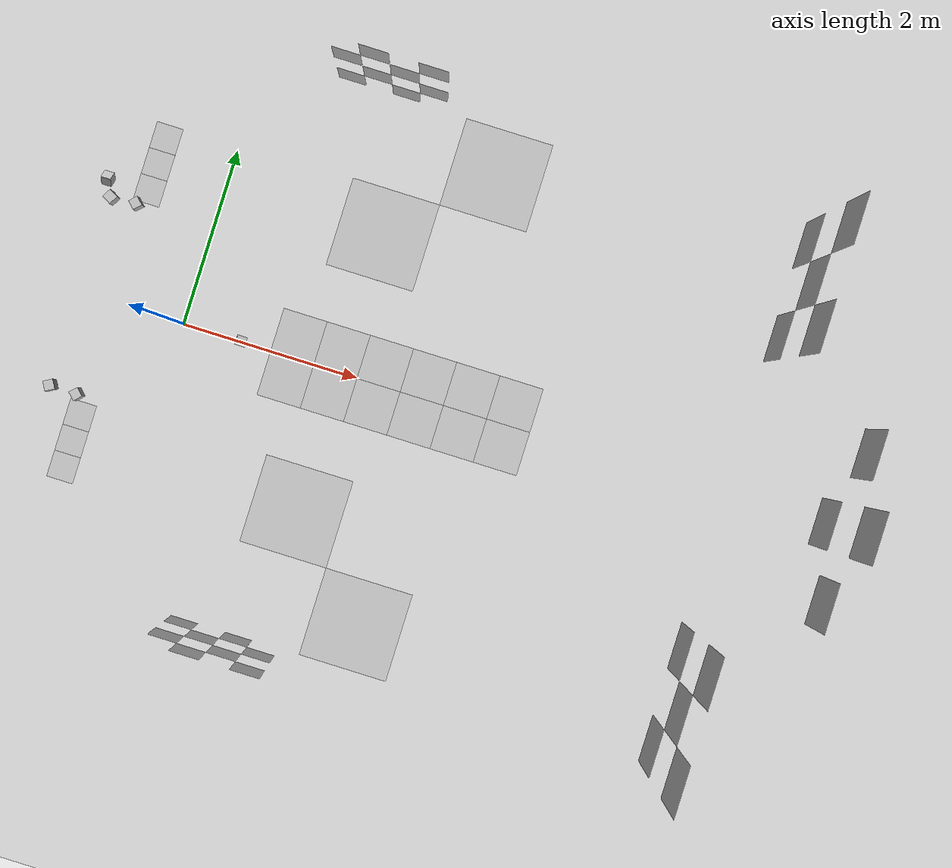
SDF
<sdf version="1.7">
 <world name="default">
  <model name="ground_plane">
   <pose>1.6 0 -0.001 0 -0 0</pose>
   <static>1</static>
   <link name="link">
    <collision name="collision">
     <geometry><plane><normal>0 0 1</normal><size>100 100</size></plane></geometry>
     <surface>
      <contact><collide_bitmask>65535</collide_bitmask></contact>
      <friction><ode><mu>100</mu><mu2>50</mu2></ode></friction>
     </surface>
    </collision>
    <visual name="visual">
     <cast_shadows>0</cast_shadows>
     <geometry><plane><normal>0 0 1</normal><size>100 100</size></plane></geometry>
     <material>
      <script><uri>file://media/materials/scripts/gazebo.material</uri><name>Gazebo/Grey</name></script>
     </material>
    </visual>
   </link>
  </model>
  <model name="Apriltag36_10_00107">
   <link name="main">
    <visual name="main_Visual">
     <geometry><box><size>0.5 0.5 0.0001</size></box></geometry>
     <material>
      <script>
       <uri>model://Apriltag36_10_00107/materials/scripts</uri>
       <uri>model://Apriltag36_10_00107/materials/textures</uri>
       <name>Apriltag36_10_00107</name>
      </script>
     </material>
    </visual>
    <collision name="collision"><geometry><box><size>0.5 0.5 0.0001</size></box></geometry></collision>
   </link>
   <static>1</static>
   <pose>3.75 0.25 0 0 -0 0</pose>
  </model>
  <model name="Apriltag36_10_00106">
   <link name="main">
    <visual name="main_Visual">
     <geometry><box><size>0.5 0.5 0.0001</size></box></geometry>
     <material>
      <script>
       <uri>model://Apriltag36_10_00106/materials/scripts</uri>
       <uri>model://Apriltag36_10_00106/materials/textures</uri>
       <name>Apriltag36_10_00106</name>
      </script>
     </material>
    </visual>
    <collision name="collision"><geometry><box><size>0.5 0.5 0.0001</size></box></geometry></collision>
   </link>
   <static>1</static>
   <pose>3.25 0.25 0 0 -0 0</pose>
  </model>
  <model name="Apriltag36_10_00105">
   <link name="main">
    <visual name="main_Visual">
     <geometry><box><size>0.5 0.5 0.0001</size></box></geometry>
     <material>
      <script>
       <uri>model://Apriltag36_10_00105/materials/scripts</uri>
       <uri>model://Apriltag36_10_00105/materials/textures</uri>
       <name>Apriltag36_10_00105</name>
      </script>
     </material>
    </visual>
    <collision name="collision"><geometry><box><size>0.5 0.5 0.0001</size></box></geometry></collision>
   </link>
   <static>1</static>
   <pose>2.75 0.25 0 0 -0 0</pose>
  </model>
  <model name="Apriltag36_10_00104">
   <link name="main">
    <visual name="main_Visual">
     <geometry><box><size>0.5 0.5 0.0001</size></box></geometry>
     <material>
      <script>
       <uri>model://Apriltag36_10_00104/materials/scripts</uri>
       <uri>model://Apriltag36_10_00104/materials/textures</uri>
       <name>Apriltag36_10_00104</name>
      </script>
     </material>
    </visual>
    <collision name="collision"><geometry><box><size>0.5 0.5 0.0001</size></box></geometry></collision>
   </link>
   <static>1</static>
   <pose>2.25 0.25 0 0 -0 0</pose>
  </model>
  <model name="Apriltag36_10_00111">
   <link name="main">
    <visual name="main_Visual">
     <geometry><box><size>0.5 0.5 0.0001</size></box></geometry>
     <material>
      <script>
       <uri>model://Apriltag36_10_00111/materials/scripts</uri>
       <uri>model://Apriltag36_10_00111/materials/textures</uri>
       <name>Apriltag36_10_00111</name>
      </script>
     </material>
    </visual>
    <collision name="collision"><geometry><box><size>0.5 0.5 0.0001</size></box></geometry></collision>
   </link>
   <static>1</static>
   <pose>3.75 -0.25 0 0 -0 0</pose>
  </model>
  <model name="Apriltag36_10_00110">
   <link name="main">
    <visual name="main_Visual">
     <geometry><box><size>0.5 0.5 0.0001</size></box></geometry>
     <material>
      <script>
       <uri>model://Apriltag36_10_00110/materials/scripts</uri>
       <uri>model://Apriltag36_10_00110/materials/textures</uri>
       <name>Apriltag36_10_00110</name>
      </script>
     </material>
    </visual>
    <collision name="collision"><geometry><box><size>0.5 0.5 0.0001</size></box></geometry></collision>
   </link>
   <static>1</static>
   <pose>3.25 -0.25 0 0 -0 0</pose>
  </model>
  <model name="Apriltag36_10_00108">
   <link name="main">
    <visual name="main_Visual">
     <geometry><box><size>0.5 0.5 0.0001</size></box></geometry>
     <material>
      <script>
       <uri>model://Apriltag36_10_00108/materials/scripts</uri>
       <uri>model://Apriltag36_10_00108/materials/textures</uri>
       <name>Apriltag36_10_00108</name>
      </script>
     </material>
    </visual>
    <collision name="collision"><geometry><box><size>0.5 0.5 0.0001</size></box></geometry></collision>
   </link>
   <static>1</static>
   <pose>2.25 -0.25 0 0 -0 0</pose>
  </model>
  <model name="Apriltag36_10_00109">
   <link name="main">
    <visual name="main_Visual">
     <geometry><box><size>0.5 0.5 0.0001</size></box></geometry>
     <material>
      <script>
       <uri>model://Apriltag36_10_00109/materials/scripts</uri>
       <uri>model://Apriltag36_10_00109/materials/textures</uri>
       <name>Apriltag36_10_00109</name>
      </script>
     </material>
    </visual>
    <collision name="collision"><geometry><box><size>0.5 0.5 0.0001</size></box></geometry></collision>
   </link>
   <static>1</static>
   <pose>2.75 -0.25 0 0 -0 0</pose>
  </model>
  <model name="Apriltag36_11_00410">
   <link name="main">
    <pose>0 0 0 0 -1.5707 0</pose>
    <visual name="main_Visual">
     <geometry><box><size>0.5 0.5 0.0001</size></box></geometry>
     <material>
      <script>
       <uri>model://Apriltag36_11_00410/materials/scripts</uri>
       <uri>model://Apriltag36_11_00410/materials/textures</uri>
       <name>Apriltag36_11_00410</name>
      </script>
     </material>
    </visual>
    <collision name="collision"><geometry><box><size>0.5 0.5 0.0001</size></box></geometry></collision>
   </link>
   <static>1</static>
   <pose>7 0 2 0 -0 0</pose>
  </model>
  <model name="Apriltag36_11_00411">
   <link name="main">
    <pose>0 0 0 0 -1.5707 0</pose>
    <visual name="main_Visual">
     <geometry><box><size>0.5 0.5 0.0001</size></box></geometry>
     <material>
      <script>
       <uri>model://Apriltag36_11_00411/materials/scripts</uri>
       <uri>model://Apriltag36_11_00411/materials/textures</uri>
       <name>Apriltag36_11_00411</name>
      </script>
     </material>
    </visual>
    <collision name="collision"><geometry><box><size>0.5 0.5 0.0001</size></box></geometry></collision>
   </link>
   <static>1</static>
   <pose>7 0.75 1.5 0 -0 0</pose>
  </model>
  <model name="Apriltag36_11_00412">
   <link name="main">
    <pose>0 0 0 0 -1.5707 0</pose>
    <visual name="main_Visual">
     <geometry><box><size>0.5 0.5 0.0001</size></box></geometry>
     <material>
      <script>
       <uri>model://Apriltag36_11_00412/materials/scripts</uri>
       <uri>model://Apriltag36_11_00412/materials/textures</uri>
       <name>Apriltag36_11_00412</name>
      </script>
     </material>
    </visual>
    <collision name="collision"><geometry><box><size>0.5 0.5 0.0001</size></box></geometry></collision>
   </link>
   <static>1</static>
   <pose>7 -0.75 1.5 0 -0 0</pose>
  </model>
  <model name="Apriltag36_11_00413">
   <link name="main">
    <pose>0 0 0 0 -1.5707 0</pose>
    <visual name="main_Visual">
     <geometry><box><size>0.5 0.5 0.0001</size></box></geometry>
     <material>
      <script>
       <uri>model://Apriltag36_11_00413/materials/scripts</uri>
       <uri>model://Apriltag36_11_00413/materials/textures</uri>
       <name>Apriltag36_11_00413</name>
      </script>
     </material>
    </visual>
    <collision name="collision"><geometry><box><size>0.5 0.5 0.0001</size></box></geometry></collision>
   </link>
   <static>1</static>
   <pose>7 0 1 0 -0 0</pose>
  </model>
  <model name="Apriltag36_11_00360">
   <link name="main">
    <pose>0 0 0 0 -1.5707 0</pose>
    <visual name="main_Visual">
     <geometry><box><size>0.5 0.5 0.0001</size></box></geometry>
     <material>
      <script>
       <uri>model://Apriltag36_11_00360/materials/scripts</uri>
       <uri>model://Apriltag36_11_00360/materials/textures</uri>
       <name>Apriltag36_11_00360</name>
      </script>
     </material>
    </visual>
    <collision name="collision"><geometry><box><size>0.5 0.5 0.0001</size></box></geometry></collision>
   </link>
   <static>1</static>
   <pose>6 1.65 2 0 -0 0</pose>
  </model>
  <model name="Apriltag36_11_00362">
   <link name="main">
    <pose>0 0 0 0 -1.5707 0</pose>
    <visual name="main_Visual">
     <geometry><box><size>0.5 0.5 0.0001</size></box></geometry>
     <material>
      <script>
       <uri>model://Apriltag36_11_00362/materials/scripts</uri>
       <uri>model://Apriltag36_11_00362/materials/textures</uri>
       <name>Apriltag36_11_00362</name>
      </script>
     </material>
    </visual>
    <collision name="collision"><geometry><box><size>0.5 0.5 0.0001</size></box></geometry></collision>
   </link>
   <static>1</static>
   <pose>6 1.65 1 0 -0 0</pose>
  </model>
  <model name="Apriltag36_11_00363">
   <link name="main">
    <pose>0 0 0 0 -1.5707 0</pose>
    <visual name="main_Visual">
     <geometry><box><size>0.5 0.5 0.0001</size></box></geometry>
     <material>
      <script>
       <uri>model://Apriltag36_11_00363/materials/scripts</uri>
       <uri>model://Apriltag36_11_00363/materials/textures</uri>
       <name>Apriltag36_11_00363</name>
      </script>
     </material>
    </visual>
    <collision name="collision"><geometry><box><size>0.5 0.5 0.0001</size></box></geometry></collision>
   </link>
   <static>1</static>
   <pose>6 -1.65 2 0 -0 0</pose>
  </model>
  <model name="Apriltag36_11_00365">
   <link name="main">
    <pose>0 0 0 0 -1.5707 0</pose>
    <visual name="main_Visual">
     <geometry><box><size>0.5 0.5 0.0001</size></box></geometry>
     <material>
      <script>
       <uri>model://Apriltag36_11_00365/materials/scripts</uri>
       <uri>model://Apriltag36_11_00365/materials/textures</uri>
       <name>Apriltag36_11_00365</name>
      </script>
     </material>
    </visual>
    <collision name="collision"><geometry><box><size>0.5 0.5 0.0001</size></box></geometry></collision>
   </link>
   <static>1</static>
   <pose>6 -1.65 1 0 -0 0</pose>
  </model>
  <model name="Apriltag36_11_00380">
   <link name="main">
    <pose>0 0 0 1.5707 -1.5707 0</pose>
    <visual name="main_Visual">
     <geometry><box><size>0.3 0.3 0.0001</size></box></geometry>
     <material>
      <script>
       <uri>model://Apriltag36_11_00380/materials/scripts</uri>
       <uri>model://Apriltag36_11_00380/materials/textures</uri>
       <name>Apriltag36_11_00380</name>
      </script>
     </material>
    </visual>
    <collision name="collision"><geometry><box><size>0.5 0.5 0.0001</size></box></geometry></collision>
   </link>
   <static>1</static>
   <pose>1.35 3 1.45 0 -0 0</pose>
  </model>
  <model name="Apriltag36_11_00381">
   <link name="main">
    <pose>0 0 0 1.5707 -1.5707 0</pose>
    <visual name="main_Visual">
     <geometry><box><size>0.3 0.3 0.0001</size></box></geometry>
     <material>
      <script>
       <uri>model://Apriltag36_11_00381/materials/scripts</uri>
       <uri>model://Apriltag36_11_00381/materials/textures</uri>
       <name>Apriltag36_11_00381</name>
      </script>
     </material>
    </visual>
    <collision name="collision"><geometry><box><size>0.5 0.5 0.0001</size></box></geometry></collision>
   </link>
   <static>1</static>
   <pose>1.95 3 1.45 0 -0 0</pose>
  </model>
  <model name="Apriltag36_11_00376">
   <link name="main">
    <pose>0 0 0 1.5707 -1.5707 0</pose>
    <visual name="main_Visual">
     <geometry><box><size>0.3 0.3 0.0001</size></box></geometry>
     <material>
      <script>
       <uri>model://Apriltag36_11_00376/materials/scripts</uri>
       <uri>model://Apriltag36_11_00376/materials/textures</uri>
       <name>Apriltag36_11_00376</name>
      </script>
     </material>
    </visual>
    <collision name="collision"><geometry><box><size>0.5 0.5 0.0001</size></box></geometry></collision>
   </link>
   <static>1</static>
   <pose>1.35 3 0.85 0 -0 0</pose>
  </model>
  <model name="Apriltag36_11_00379">
   <link name="main">
    <pose>0 0 0 1.5707 -1.5707 0</pose>
    <visual name="main_Visual">
     <geometry><box><size>0.3 0.3 0.0001</size></box></geometry>
     <material>
      <script>
       <uri>model://Apriltag36_11_00379/materials/scripts</uri>
       <uri>model://Apriltag36_11_00379/materials/textures</uri>
       <name>Apriltag36_11_00379</name>
      </script>
     </material>
    </visual>
    <collision name="collision"><geometry><box><size>0.5 0.5 0.0001</size></box></geometry></collision>
   </link>
   <static>1</static>
   <pose>1.65 3 1.15 0 -0 0</pose>
  </model>
  <model name="Apriltag36_11_00378">
   <link name="main">
    <pose>0 0 0 1.5707 -1.5707 0</pose>
    <visual name="main_Visual">
     <geometry><box><size>0.3 0.3 0.0001</size></box></geometry>
     <material>
      <script>
       <uri>model://Apriltag36_11_00378/materials/scripts</uri>
       <uri>model://Apriltag36_11_00378/materials/textures</uri>
       <name>Apriltag36_11_00378</name>
      </script>
     </material>
    </visual>
    <collision name="collision"><geometry><box><size>0.5 0.5 0.0001</size></box></geometry></collision>
   </link>
   <static>1</static>
   <pose>1.05 3 1.15 0 -0 0</pose>
  </model>
  <model name="Apriltag36_11_00377">
   <link name="main">
    <pose>0 0 0 1.5707 -1.5707 0</pose>
    <visual name="main_Visual">
     <geometry><box><size>0.3 0.3 0.0001</size></box></geometry>
     <material>
      <script>
       <uri>model://Apriltag36_11_00377/materials/scripts</uri>
       <uri>model://Apriltag36_11_00377/materials/textures</uri>
       <name>Apriltag36_11_00377</name>
      </script>
     </material>
    </visual>
    <collision name="collision"><geometry><box><size>0.5 0.5 0.0001</size></box></geometry></collision>
   </link>
   <static>1</static>
   <pose>1.95 3 0.85 0 -0 0</pose>
  </model>
  <model name="Apriltag36_11_00374">
   <link name="main">
    <pose>0 0 0 1.5707 -1.5707 0</pose>
    <visual name="main_Visual">
     <geometry><box><size>0.3 0.3 0.0001</size></box></geometry>
     <material>
      <script>
       <uri>model://Apriltag36_11_00374/materials/scripts</uri>
       <uri>model://Apriltag36_11_00374/materials/textures</uri>
       <name>Apriltag36_11_00374</name>
      </script>
     </material>
    </visual>
    <collision name="collision"><geometry><box><size>0.5 0.5 0.0001</size></box></geometry></collision>
   </link>
   <static>1</static>
   <pose>1.05 3 0.55 0 -0 0</pose>
  </model>
  <model name="Apriltag36_11_00386">
   <link name="main">
    <pose>0 0 0 -1.5707 -1.5707 -0</pose>
    <visual name="main_Visual">
     <geometry><box><size>0.3 0.3 0.0001</size></box></geometry>
     <material>
      <script>
       <uri>model://Apriltag36_11_00386/materials/scripts</uri>
       <uri>model://Apriltag36_11_00386/materials/textures</uri>
       <name>Apriltag36_11_00386</name>
      </script>
     </material>
    </visual>
    <collision name="collision"><geometry><box><size>0.5 0.5 0.0001</size></box></geometry></collision>
   </link>
   <static>1</static>
   <pose>1.65 -3 1.15 0 -0 0</pose>
  </model>
  <model name="Apriltag36_11_00385">
   <link name="main">
    <pose>0 0 0 -1.5707 -1.5707 -0</pose>
    <visual name="main_Visual">
     <geometry><box><size>0.3 0.3 0.0001</size></box></geometry>
     <material>
      <script>
       <uri>model://Apriltag36_11_00385/materials/scripts</uri>
       <uri>model://Apriltag36_11_00385/materials/textures</uri>
       <name>Apriltag36_11_00385</name>
      </script>
     </material>
    </visual>
    <collision name="collision"><geometry><box><size>0.5 0.5 0.0001</size></box></geometry></collision>
   </link>
   <static>1</static>
   <pose>1.35 -3 0.85 0 -0 0</pose>
  </model>
  <model name="Apriltag36_11_00389">
   <link name="main">
    <pose>0 0 0 -1.5707 -1.5707 -0</pose>
    <visual name="main_Visual">
     <geometry><box><size>0.3 0.3 0.0001</size></box></geometry>
     <material>
      <script>
       <uri>model://Apriltag36_11_00389/materials/scripts</uri>
       <uri>model://Apriltag36_11_00389/materials/textures</uri>
       <name>Apriltag36_11_00389</name>
      </script>
     </material>
    </visual>
    <collision name="collision"><geometry><box><size>0.5 0.5 0.0001</size></box></geometry></collision>
   </link>
   <static>1</static>
   <pose>1.35 -3 1.45 0 -0 0</pose>
  </model>
  <model name="Apriltag36_11_00387">
   <link name="main">
    <pose>0 0 0 -1.5707 -1.5707 -0</pose>
    <visual name="main_Visual">
     <geometry><box><size>0.3 0.3 0.0001</size></box></geometry>
     <material>
      <script>
       <uri>model://Apriltag36_11_00387/materials/scripts</uri>
       <uri>model://Apriltag36_11_00387/materials/textures</uri>
       <name>Apriltag36_11_00387</name>
      </script>
     </material>
    </visual>
    <collision name="collision"><geometry><box><size>0.5 0.5 0.0001</size></box></geometry></collision>
   </link>
   <static>1</static>
   <pose>1.05 -3 1.15 0 -0 0</pose>
  </model>
  <model name="Apriltag36_11_00382">
   <link name="main">
    <pose>0 0 0 -1.5707 -1.5707 -0</pose>
    <visual name="main_Visual">
     <geometry><box><size>0.3 0.3 0.0001</size></box></geometry>
     <material>
      <script>
       <uri>model://Apriltag36_11_00382/materials/scripts</uri>
       <uri>model://Apriltag36_11_00382/materials/textures</uri>
       <name>Apriltag36_11_00382</name>
      </script>
     </material>
    </visual>
    <collision name="collision"><geometry><box><size>0.5 0.5 0.0001</size></box></geometry></collision>
   </link>
   <static>1</static>
   <pose>1.65 -3 0.55 0 -0 0</pose>
  </model>
  <model name="Apriltag36_11_00383">
   <link name="main">
    <pose>0 0 0 -1.5707 -1.5707 -0</pose>
    <visual name="main_Visual">
     <geometry><box><size>0.3 0.3 0.0001</size></box></geometry>
     <material>
      <script>
       <uri>model://Apriltag36_11_00383/materials/scripts</uri>
       <uri>model://Apriltag36_11_00383/materials/textures</uri>
       <name>Apriltag36_11_00383</name>
      </script>
     </material>
    </visual>
    <collision name="collision"><geometry><box><size>0.5 0.5 0.0001</size></box></geometry></collision>
   </link>
   <static>1</static>
   <pose>1.05 -3 0.55 0 -0 0</pose>
  </model>
  <model name="Apriltag36_10_00124">
   <link name="main">
    <visual name="main_Visual">
     <geometry><box><size>1 1 0.0001</size></box></geometry>
     <material>
      <script>
       <uri>model://Apriltag36_10_00124/materials/scripts</uri>
       <uri>model://Apriltag36_10_00124/materials/textures</uri>
       <name>Apriltag36_10_00124</name>
      </script>
     </material>
    </visual>
    <collision name="collision"><geometry><box><size>1 1 0.0001</size></box></geometry></collision>
   </link>
   <static>1</static>
   <pose>1.8 1.6 0 0 -0 0</pose>
  </model>
  <model name="Apriltag36_10_00125">
   <link name="main">
    <visual name="main_Visual">
     <geometry><box><size>1 1 0.0001</size></box></geometry>
     <material>
      <script>
       <uri>model://Apriltag36_10_00125/materials/scripts</uri>
       <uri>model://Apriltag36_10_00125/materials/textures</uri>
       <name>Apriltag36_10_00125</name>
      </script>
     </material>
    </visual>
    <collision name="collision"><geometry><box><size>1 1 0.0001</size></box></geometry></collision>
   </link>
   <static>1</static>
   <pose>1.8 -1.6 0 0 -0 0</pose>
  </model>
  <model name="Apriltag36_10_00128">
   <link name="main">
    <visual name="main_Visual">
     <geometry><box><size>0.3 0.3 0.0001</size></box></geometry>
     <material>
      <script>
       <uri>model://Apriltag36_10_00128/materials/scripts</uri>
       <uri>model://Apriltag36_10_00128/materials/textures</uri>
       <name>Apriltag36_10_00128</name>
      </script>
     </material>
    </visual>
    <collision name="collision"><geometry><box><size>0.3 0.3 0.0001</size></box></geometry></collision>
   </link>
   <static>1</static>
   <pose>-0.8 1.9 0 0 -0 0</pose>
  </model>
  <model name="Apriltag36_10_00129">
   <link name="main">
    <visual name="main_Visual">
     <geometry><box><size>0.3 0.3 0.0001</size></box></geometry>
     <material>
      <script>
       <uri>model://Apriltag36_10_00129/materials/scripts</uri>
       <uri>model://Apriltag36_10_00129/materials/textures</uri>
       <name>Apriltag36_10_00129</name>
      </script>
     </material>
    </visual>
    <collision name="collision"><geometry><box><size>0.3 0.3 0.0001</size></box></geometry></collision>
   </link>
   <static>1</static>
   <pose>-0.8 1.6 0 0 -0 0</pose>
  </model>
  <model name="Apriltag36_10_00130">
   <link name="main">
    <visual name="main_Visual">
     <geometry><box><size>0.3 0.3 0.0001</size></box></geometry>
     <material>
      <script>
       <uri>model://Apriltag36_10_00130/materials/scripts</uri>
       <uri>model://Apriltag36_10_00130/materials/textures</uri>
       <name>Apriltag36_10_00130</name>
      </script>
     </material>
    </visual>
    <collision name="collision"><geometry><box><size>0.3 0.3 0.0001</size></box></geometry></collision>
   </link>
   <static>1</static>
   <pose>-0.8 1.3 0 0 -0 0</pose>
  </model>
  <model name="Apriltag36_10_00139">
   <link name="main">
    <visual name="main_Visual">
     <geometry><box><size>0.3 0.3 0.0001</size></box></geometry>
     <material>
      <script>
       <uri>model://Apriltag36_10_00139/materials/scripts</uri>
       <uri>model://Apriltag36_10_00139/materials/textures</uri>
       <name>Apriltag36_10_00139</name>
      </script>
     </material>
    </visual>
    <collision name="collision"><geometry><box><size>0.3 0.3 0.0001</size></box></geometry></collision>
   </link>
   <static>1</static>
   <pose>-0.8 -1.9 0 0 -0 0</pose>
  </model>
  <model name="Apriltag36_10_00138">
   <link name="main">
    <visual name="main_Visual">
     <geometry><box><size>0.3 0.3 0.0001</size></box></geometry>
     <material>
      <script>
       <uri>model://Apriltag36_10_00138/materials/scripts</uri>
       <uri>model://Apriltag36_10_00138/materials/textures</uri>
       <name>Apriltag36_10_00138</name>
      </script>
     </material>
    </visual>
    <collision name="collision"><geometry><box><size>0.3 0.3 0.0001</size></box></geometry></collision>
   </link>
   <static>1</static>
   <pose>-0.8 -1.6 0 0 -0 0</pose>
  </model>
  <model name="Apriltag36_10_00137">
   <link name="main">
    <visual name="main_Visual">
     <geometry><box><size>0.3 0.3 0.0001</size></box></geometry>
     <material>
      <script>
       <uri>model://Apriltag36_10_00137/materials/scripts</uri>
       <uri>model://Apriltag36_10_00137/materials/textures</uri>
       <name>Apriltag36_10_00137</name>
      </script>
     </material>
    </visual>
    <collision name="collision"><geometry><box><size>0.3 0.3 0.0001</size></box></geometry></collision>
   </link>
   <static>1</static>
   <pose>-0.8 -1.3 0 0 -0 0</pose>
  </model>
  <model name="jetour_nrcs_front">
   <pose>0.854392 0 0.970067 0 0.2443 0</pose>
   <link name="link">
    <inertial><mass>0.1</mass></inertial>
    <collision name="collision"><geometry><box><size>0.1 0.1 0.1</size></box></geometry></collision>
    <visual name="visual"><geometry><box><size>0.1 0.1 0.1</size></box></geometry></visual>
    <sensor name="camera" type="wideanglecamera">
     <camera>
      <horizontal_fov>3.40339</horizontal_fov>
      <image><width>1920</width><height>1536</height></image>
      <clip><near>0.1</near><far>100</far></clip>
      <lens>
       <type>stereographic</type>
       <scale_to_hfov>1</scale_to_hfov>
       <cutoff_angle>1.7</cutoff_angle>
       <env_texture_size>512</env_texture_size>
      </lens>
     </camera>
     <always_on>1</always_on>
     <update_rate>30</update_rate>
     <plugin name="camera_controller" filename="libgazebo_ros_camera.so">
      <alwaysOn>1</alwaysOn>
      <updateRate>0.0</updateRate>
      <cameraName>jetour_nrcs_front</cameraName>
      <imageTopicName>jetour_nrcs_front_image_raw</imageTopicName>
      <cameraInfoTopicName>jetour_nrcs_front_camera_info</cameraInfoTopicName>
      <frameName>jetour_nrcs_front_link</frameName>
      <hackBaseline>0.07</hackBaseline>
      <distortionK1>0.0</distortionK1>
      <distortionK2>0.0</distortionK2>
      <distortionK3>0.0</distortionK3>
      <distortionT1>0.0</distortionT1>
      <distortionT2>0.0</distortionT2>
     </plugin>
    </sensor>
   </link>
   <static>1</static>
  </model>
  <model name="jetour_nrcs_left">
   <pose>-0.856 1.145 1.11706 1e-06 0.610801 1.5707</pose>
   <link name="link">
    <inertial><mass>0.1</mass></inertial>
    <collision name="collision"><geometry><box><size>0.1 0.1 0.1</size></box></geometry></collision>
    <visual name="visual"><geometry><box><size>0.1 0.1 0.1</size></box></geometry></visual>
    <sensor name="camera" type="wideanglecamera">
     <camera>
      <horizontal_fov>3.40339</horizontal_fov>
      <image><width>1920</width><height>1536</height></image>
      <clip><near>0.1</near><far>100</far></clip>
      <lens>
       <type>stereographic</type>
       <scale_to_hfov>1</scale_to_hfov>
       <cutoff_angle>1.7</cutoff_angle>
       <env_texture_size>512</env_texture_size>
      </lens>
     </camera>
     <always_on>1</always_on>
     <update_rate>30</update_rate>
     <plugin name="camera_controller" filename="libgazebo_ros_camera.so">
      <alwaysOn>1</alwaysOn>
      <updateRate>0.0</updateRate>
      <cameraName>jetour_nrcs_left</cameraName>
      <imageTopicName>jetour_nrcs_left_image_raw</imageTopicName>
      <cameraInfoTopicName>jetour_nrcs_left_camera_info</cameraInfoTopicName>
      <frameName>jetour_nrcs_left_link</frameName>
      <hackBaseline>0.07</hackBaseline>
      <distortionK1>0.0</distortionK1>
      <distortionK2>0.0</distortionK2>
      <distortionK3>0.0</distortionK3>
      <distortionT1>0.0</distortionT1>
      <distortionT2>0.0</distortionT2>
     </plugin>
    </sensor>
   </link>
   <static>1</static>
  </model>
  <model name="Apriltag36_11_00361">
   <link name="main">
    <pose>0 0 0 0 -1.5707 0</pose>
    <visual name="main_Visual">
     <geometry><box><size>0.5 0.5 0.0001</size></box></geometry>
     <material>
      <script>
       <uri>model://Apriltag36_11_00361/materials/scripts</uri>
       <uri>model://Apriltag36_11_00361/materials/textures</uri>
       <name>Apriltag36_11_00361</name>
      </script>
     </material>
    </visual>
    <collision name="collision"><geometry><box><size>0.5 0.5 0.0001</size></box></geometry></collision>
   </link>
   <static>1</static>
   <pose>6 2.15 1.5 0 -0 0</pose>
  </model>
  <model name="Apriltag36_11_00364">
   <link name="main">
    <pose>0 0 0 0 -1.5707 0</pose>
    <visual name="main_Visual">
     <geometry><box><size>0.5 0.5 0.0001</size></box></geometry>
     <material>
      <script>
       <uri>model://Apriltag36_11_00364/materials/scripts</uri>
       <uri>model://Apriltag36_11_00364/materials/textures</uri>
       <name>Apriltag36_11_00364</name>
      </script>
     </material>
    </visual>
    <collision name="collision"><geometry><box><size>0.5 0.5 0.0001</size></box></geometry></collision>
   </link>
   <static>1</static>
   <pose>6 -2.15 1.5 0 -0 0</pose>
  </model>
  <model name="Apriltag36_10_00103">
   <link name="main">
    <visual name="main_Visual">
     <geometry><box><size>0.5 0.5 0.0001</size></box></geometry>
     <material>
      <script>
       <uri>model://Apriltag36_10_00103/materials/scripts</uri>
       <uri>model://Apriltag36_10_00103/materials/textures</uri>
       <name>Apriltag36_10_00103</name>
      </script>
     </material>
    </visual>
    <collision name="collision"><geometry><box><size>0.5 0.5 0.0001</size></box></geometry></collision>
   </link>
   <static>1</static>
   <pose>1.75 -0.25 0 0 -0 0</pose>
  </model>
  <model name="Apriltag36_10_00102">
   <link name="main">
    <visual name="main_Visual">
     <geometry><box><size>0.5 0.5 0.0001</size></box></geometry>
     <material>
      <script>
       <uri>model://Apriltag36_10_00102/materials/scripts</uri>
       <uri>model://Apriltag36_10_00102/materials/textures</uri>
       <name>Apriltag36_10_00102</name>
      </script>
     </material>
    </visual>
    <collision name="collision"><geometry><box><size>0.5 0.5 0.0001</size></box></geometry></collision>
   </link>
   <static>1</static>
   <pose>1.25 -0.25 0 0 -0 0</pose>
  </model>
  <model name="Apriltag36_10_00101">
   <link name="main">
    <visual name="main_Visual">
     <geometry><box><size>0.5 0.5 0.0001</size></box></geometry>
     <material>
      <script>
       <uri>model://Apriltag36_10_00101/materials/scripts</uri>
       <uri>model://Apriltag36_10_00101/materials/textures</uri>
       <name>Apriltag36_10_00101</name>
      </script>
     </material>
    </visual>
    <collision name="collision"><geometry><box><size>0.5 0.5 0.0001</size></box></geometry></collision>
   </link>
   <static>1</static>
   <pose>1.75 0.25 0 0 -0 0</pose>
  </model>
  <model name="Apriltag36_10_00100">
   <link name="main">
    <visual name="main_Visual">
     <geometry><box><size>0.5 0.5 0.0001</size></box></geometry>
     <material>
      <script>
       <uri>model://Apriltag36_10_00100/materials/scripts</uri>
       <uri>model://Apriltag36_10_00100/materials/textures</uri>
       <name>Apriltag36_10_00100</name>
      </script>
     </material>
    </visual>
    <collision name="collision"><geometry><box><size>0.5 0.5 0.0001</size></box></geometry></collision>
   </link>
   <static>1</static>
   <pose>1.25 0.25 0 0 -0 0</pose>
  </model>
  <model name="Apriltag36_11_00375">
   <link name="main">
    <pose>0 0 0 1.5707 -1.5707 0</pose>
    <visual name="main_Visual">
     <geometry><box><size>0.3 0.3 0.0001</size></box></geometry>
     <material>
      <script>
       <uri>model://Apriltag36_11_00375/materials/scripts</uri>
       <uri>model://Apriltag36_11_00375/materials/textures</uri>
       <name>Apriltag36_11_00375</name>
      </script>
     </material>
    </visual>
    <collision name="collision"><geometry><box><size>0.5 0.5 0.0001</size></box></geometry></collision>
   </link>
   <static>1</static>
   <pose>1.65 3 0.55 0 -0 0</pose>
  </model>
  <model name="Apriltag36_11_00388">
   <link name="main">
    <pose>0 0 0 -1.5707 -1.5707 -0</pose>
    <visual name="main_Visual">
     <geometry><box><size>0.3 0.3 0.0001</size></box></geometry>
     <material>
      <script>
       <uri>model://Apriltag36_11_00388/materials/scripts</uri>
       <uri>model://Apriltag36_11_00388/materials/textures</uri>
       <name>Apriltag36_11_00388</name>
      </script>
     </material>
    </visual>
    <collision name="collision"><geometry><box><size>0.5 0.5 0.0001</size></box></geometry></collision>
   </link>
   <static>1</static>
   <pose>1.95 -3 1.45 0 -0 0</pose>
  </model>
  <model name="Apriltag36_11_00384">
   <link name="main">
    <pose>0 0 0 -1.5707 -1.5707 -0</pose>
    <visual name="main_Visual">
     <geometry><box><size>0.3 0.3 0.0001</size></box></geometry>
     <material>
      <script>
       <uri>model://Apriltag36_11_00384/materials/scripts</uri>
       <uri>model://Apriltag36_11_00384/materials/textures</uri>
       <name>Apriltag36_11_00384</name>
      </script>
     </material>
    </visual>
    <collision name="collision"><geometry><box><size>0.5 0.5 0.0001</size></box></geometry></collision>
   </link>
   <static>1</static>
   <pose>1.95 -3 0.85 0 -0 0</pose>
  </model>
  <model name="around_front_left_cam">
   <pose>-0.707 0.955 1.28 0 -0 1.047</pose>
   <link name="link">
    <inertial>
     <mass>0.1</mass>
     <inertia>
      <ixx>0.000166667</ixx>
      <iyy>0.000166667</iyy>
      <izz>0.000166667</izz>
      <ixy>0</ixy>
      <ixz>0</ixz>
      <iyz>0</iyz>
     </inertia>
    </inertial>
    <collision name="collision"><geometry><box><size>0.1 0.1 0.1</size></box></geometry></collision>
    <visual name="visual"><geometry><box><size>0.1 0.1 0.1</size></box></geometry></visual>
    <sensor name="camera" type="camera">
     <camera>
      <horizontal_fov>1.74533</horizontal_fov>
      <image><width>1920</width><height>1280</height></image>
      <clip><near>0.1</near><far>100</far></clip>
      <distortion>
       <k1>-0.502779</k1>
       <k2>0.329759</k2>
       <k3>-0.30564</k3>
       <p1>0</p1>
       <p2>0</p2>
       <center>0.48477 0.5326</center>
      </distortion>
      <noise><type>gaussian</type><mean>0</mean><stddev>0.007</stddev></noise>
     </camera>
     <plugin name="camera_controller" filename="libgazebo_ros_camera.so">
      <alwaysOn>1</alwaysOn>
      <updateRate>0.0</updateRate>
      <cameraName>qirui_around_front_left_cam</cameraName>
      <imageTopicName>around_front_left_image_raw</imageTopicName>
      <cameraInfoTopicName>around_front_left_camera_info</cameraInfoTopicName>
      <frameName>around_front_left_camera_link</frameName>
      <hackBaseline>0.0</hackBaseline>
      <distortionK1>-0.5027794468124849</distortionK1>
      <distortionK2>0.329759300565976</distortionK2>
      <distortionK3>-0.3056395265387194</distortionK3>
      <distortionT1>0.0</distortionT1>
      <distortionT2>0.0</distortionT2>
     </plugin>
     <always_on>1</always_on>
     <update_rate>30</update_rate>
     <visualize>1</visualize>
    </sensor>
   </link>
   <static>1</static>
  </model>
  <model name="around_front_right_cam">
   <pose>-0.72864 -0.969279 1.28 0 0 -1.047</pose>
   <link name="link">
    <inertial>
     <mass>0.1</mass>
     <inertia>
      <ixx>0.000166667</ixx>
      <iyy>0.000166667</iyy>
      <izz>0.000166667</izz>
      <ixy>0</ixy>
      <ixz>0</ixz>
      <iyz>0</iyz>
     </inertia>
    </inertial>
    <collision name="collision"><geometry><box><size>0.1 0.1 0.1</size></box></geometry></collision>
    <visual name="visual"><geometry><box><size>0.1 0.1 0.1</size></box></geometry></visual>
    <sensor name="camera" type="camera">
     <camera>
      <horizontal_fov>1.74533</horizontal_fov>
      <image><width>1920</width><height>1280</height></image>
      <clip><near>0.1</near><far>100</far></clip>
      <distortion>
       <k1>-0.502779</k1>
       <k2>0.329759</k2>
       <k3>-0.30564</k3>
       <p1>0</p1>
       <p2>0</p2>
       <center>0.48477 0.5326</center>
      </distortion>
      <noise><type>gaussian</type><mean>0</mean><stddev>0.007</stddev></noise>
     </camera>
     <plugin name="camera_controller" filename="libgazebo_ros_camera.so">
      <alwaysOn>1</alwaysOn>
      <updateRate>0.0</updateRate>
      <cameraName>qirui_around_front_right_cam</cameraName>
      <imageTopicName>around_front_right_image_raw</imageTopicName>
      <cameraInfoTopicName>around_front_right_camera_info</cameraInfoTopicName>
      <frameName>around_front_right_camera_link</frameName>
      <hackBaseline>0.0</hackBaseline>
      <distortionK1>0.0</distortionK1>
      <distortionK2>0.0</distortionK2>
      <distortionK3>0.0</distortionK3>
      <distortionT1>0.0</distortionT1>
      <distortionT2>0.0</distortionT2>
     </plugin>
     <always_on>1</always_on>
     <update_rate>30</update_rate>
     <visualize>1</visualize>
    </sensor>
   </link>
   <static>1</static>
  </model>
  <model name="around_rear_left_cam">
   <pose>-0.55438 1.00141 0.99371 0 -0 2.356</pose>
   <link name="link">
    <inertial>
     <mass>0.1</mass>
     <inertia>
      <ixx>0.000166667</ixx>
      <iyy>0.000166667</iyy>
      <izz>0.000166667</izz>
      <ixy>0</ixy>
      <ixz>0</ixz>
      <iyz>0</iyz>
     </inertia>
    </inertial>
    <collision name="collision"><geometry><box><size>0.1 0.1 0.1</size></box></geometry></collision>
    <visual name="visual"><geometry><box><size>0.1 0.1 0.1</size></box></geometry></visual>
    <sensor name="camera" type="camera">
     <camera>
      <horizontal_fov>1.74533</horizontal_fov>
      <image><width>1920</width><height>1280</height></image>
      <clip><near>0.1</near><far>100</far></clip>
      <distortion>
       <k1>-0.502779</k1>
       <k2>0.329759</k2>
       <k3>-0.30564</k3>
       <p1>0</p1>
       <p2>0</p2>
       <center>0.48477 0.5326</center>
      </distortion>
      <noise><type>gaussian</type><mean>0</mean><stddev>0.007</stddev></noise>
     </camera>
     <plugin name="camera_controller" filename="libgazebo_ros_camera.so">
      <alwaysOn>1</alwaysOn>
      <updateRate>0.0</updateRate>
      <cameraName>qirui_around_rear_left_cam</cameraName>
      <imageTopicName>around_rear_left_image_raw</imageTopicName>
      <cameraInfoTopicName>around_rear_left_camera_info</cameraInfoTopicName>
      <frameName>around_rear_left_camera_link</frameName>
      <hackBaseline>0.0</hackBaseline>
      <distortionK1>-0.5027794468124849</distortionK1>
      <distortionK2>0.329759300565976</distortionK2>
      <distortionK3>-0.3056395265387194</distortionK3>
      <distortionT1>0.0</distortionT1>
      <distortionT2>0.0</distortionT2>
     </plugin>
     <always_on>1</always_on>
     <update_rate>30</update_rate>
     <visualize>1</visualize>
    </sensor>
   </link>
   <static>1</static>
  </model>
  <model name="around_rear_right_cam">
   <pose>-0.55438 -1.00141 0.99371 0 0 -2.356</pose>
   <link name="link">
    <inertial>
     <mass>0.1</mass>
     <inertia>
      <ixx>0.000166667</ixx>
      <iyy>0.000166667</iyy>
      <izz>0.000166667</izz>
      <ixy>0</ixy>
      <ixz>0</ixz>
      <iyz>0</iyz>
     </inertia>
    </inertial>
    <collision name="collision"><geometry><box><size>0.1 0.1 0.1</size></box></geometry></collision>
    <visual name="visual"><geometry><box><size>0.1 0.1 0.1</size></box></geometry></visual>
    <sensor name="camera" type="camera">
     <camera>
      <horizontal_fov>1.74533</horizontal_fov>
      <image><width>1920</width><height>1280</height></image>
      <clip><near>0.1</near><far>100</far></clip>
      <distortion>
       <k1>-0.502779</k1>
       <k2>0.329759</k2>
       <k3>-0.30564</k3>
       <p1>0</p1>
       <p2>0</p2>
       <center>0.48477 0.5326</center>
      </distortion>
      <noise><type>gaussian</type><mean>0</mean><stddev>0.007</stddev></noise>
     </camera>
     <plugin name="camera_controller" filename="libgazebo_ros_camera.so">
      <alwaysOn>1</alwaysOn>
      <updateRate>0.0</updateRate>
      <cameraName>qirui_around_rear_right_cam</cameraName>
      <imageTopicName>around_rear_right_image_raw</imageTopicName>
      <cameraInfoTopicName>around_rear_right_camera_info</cameraInfoTopicName>
      <frameName>around_rear_right_camera_link</frameName>
      <hackBaseline>0.0</hackBaseline>
      <distortionK1>-0.5027794468124849</distortionK1>
      <distortionK2>>0.329759300565976</distortionK2>
      <distortionK3>-0.3056395265387194</distortionK3>
      <distortionT1>0.0</distortionT1>
      <distortionT2>0.0</distortionT2>
     </plugin>
     <always_on>1</always_on>
     <update_rate>30</update_rate>
     <visualize>1</visualize>
    </sensor>
   </link>
   <static>1</static>
  </model>
  <model name="Apriltag36_11_00400">
   <link name="main">
    <pose>0 0 0 0 -1.5707 0</pose>
    <visual name="main_Visual">
     <geometry><box><size>0.5 0.5 0.0001</size></box></geometry>
     <material>
      <script>
       <uri>model://Apriltag36_11_00400/materials/scripts</uri>
       <uri>model://Apriltag36_11_00400/materials/textures</uri>
       <name>Apriltag36_11_00400</name>
      </script>
     </material>
    </visual>
    <collision name="collision"><geometry><box><size>0.5 0.5 0.0001</size></box></geometry></collision>
   </link>
   <static>1</static>
   <pose>6 2.65 2 0 -0 0</pose>
  </model>
  <model name="Apriltag36_11_00401">
   <link name="main">
    <pose>0 0 0 0 -1.5707 0</pose>
    <visual name="main_Visual">
     <geometry><box><size>0.5 0.5 0.0001</size></box></geometry>
     <material>
      <script>
       <uri>model://Apriltag36_11_00401/materials/scripts</uri>
       <uri>model://Apriltag36_11_00401/materials/textures</uri>
       <name>Apriltag36_11_00401</name>
      </script>
     </material>
    </visual>
    <collision name="collision"><geometry><box><size>0.5 0.5 0.0001</size></box></geometry></collision>
   </link>
   <static>1</static>
   <pose>6 2.65 1 0 -0 0</pose>
  </model>
  <model name="Apriltag36_11_00402">
   <link name="main">
    <pose>0 0 0 0 -1.5707 0</pose>
    <visual name="main_Visual">
     <geometry><box><size>0.5 0.5 0.0001</size></box></geometry>
     <material>
      <script>
       <uri>model://Apriltag36_11_00402/materials/scripts</uri>
       <uri>model://Apriltag36_11_00402/materials/textures</uri>
       <name>Apriltag36_11_00402</name>
      </script>
     </material>
    </visual>
    <collision name="collision"><geometry><box><size>0.5 0.5 0.0001</size></box></geometry></collision>
   </link>
   <static>1</static>
   <pose>6 -2.65 2 0 -0 0</pose>
  </model>
  <model name="Apriltag36_11_00403">
   <link name="main">
    <pose>0 0 0 0 -1.5707 0</pose>
    <visual name="main_Visual">
     <geometry><box><size>0.5 0.5 0.0001</size></box></geometry>
     <material>
      <script>
       <uri>model://Apriltag36_11_00403/materials/scripts</uri>
       <uri>model://Apriltag36_11_00403/materials/textures</uri>
       <name>Apriltag36_11_00403</name>
      </script>
     </material>
    </visual>
    <collision name="collision"><geometry><box><size>0.5 0.5 0.0001</size></box></geometry></collision>
   </link>
   <static>1</static>
   <pose>6 -2.65 1 0 -0 0</pose>
  </model>
  <model name="Apriltag36_10_00150">
   <link name="main">
    <visual name="main_Visual">
     <geometry><box><size>1 1 0.0001</size></box></geometry>
     <material>
      <script>
       <uri>model://Apriltag36_10_00150/materials/scripts</uri>
       <uri>model://Apriltag36_10_00150/materials/textures</uri>
       <name>Apriltag36_10_00150</name>
      </script>
     </material>
    </visual>
    <collision name="collision"><geometry><box><size>1 1 0.0001</size></box></geometry></collision>
   </link>
   <static>1</static>
   <pose>2.8 2.6 0 0 -0 0</pose>
  </model>
  <model name="Apriltag36_10_00151">
   <link name="main">
    <visual name="main_Visual">
     <geometry><box><size>1 1 0.0001</size></box></geometry>
     <material>
      <script>
       <uri>model://Apriltag36_10_00151/materials/scripts</uri>
       <uri>model://Apriltag36_10_00151/materials/textures</uri>
       <name>Apriltag36_10_00151</name>
      </script>
     </material>
    </visual>
    <collision name="collision"><geometry><box><size>1 1 0.0001</size></box></geometry></collision>
   </link>
   <static>1</static>
   <pose>2.8 -2.6 0 0 -0 0</pose>
  </model>
 </world>
</sdf>
